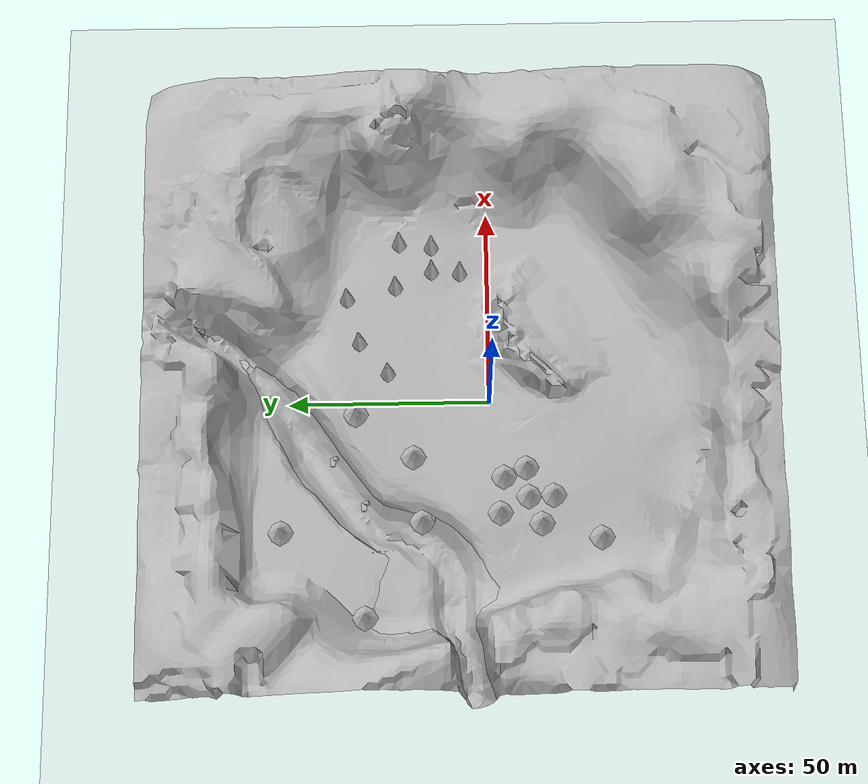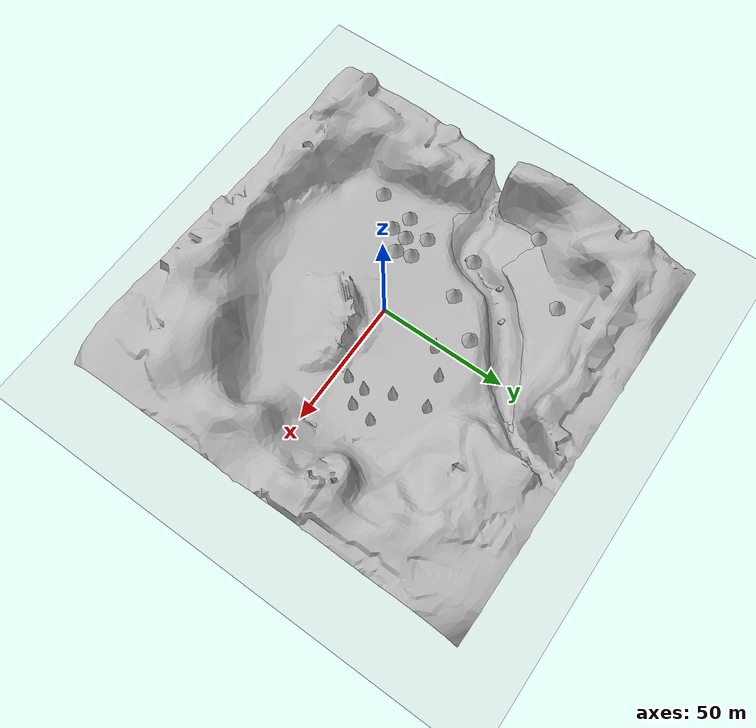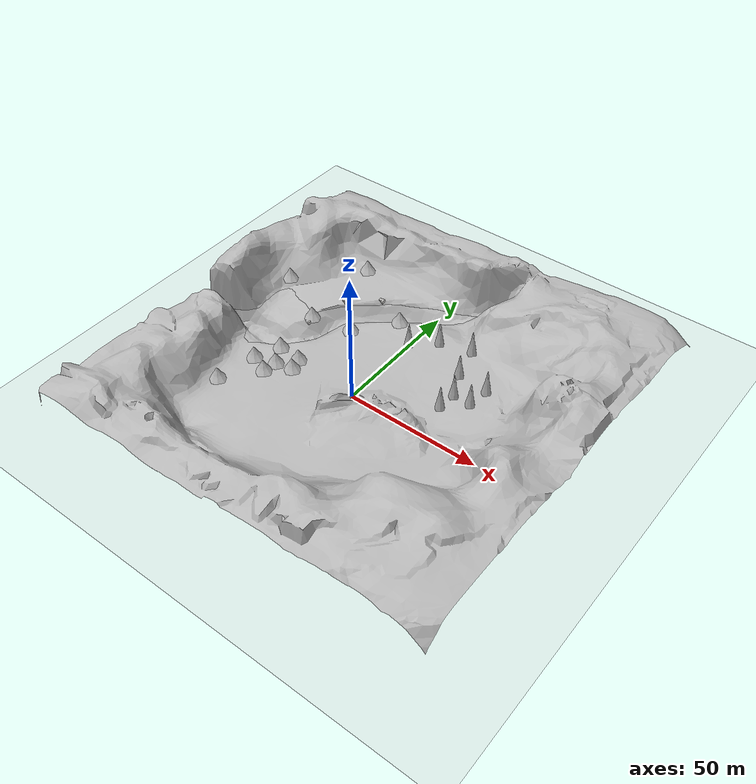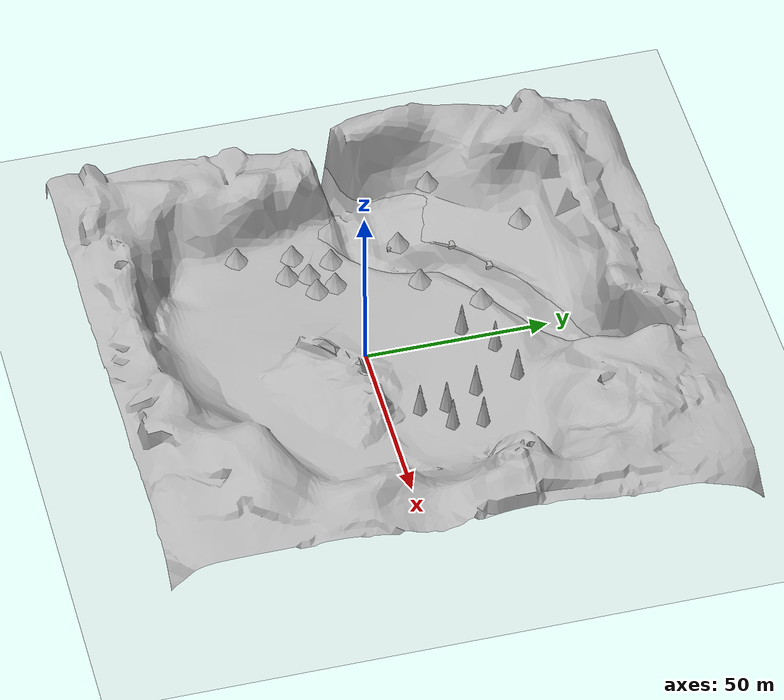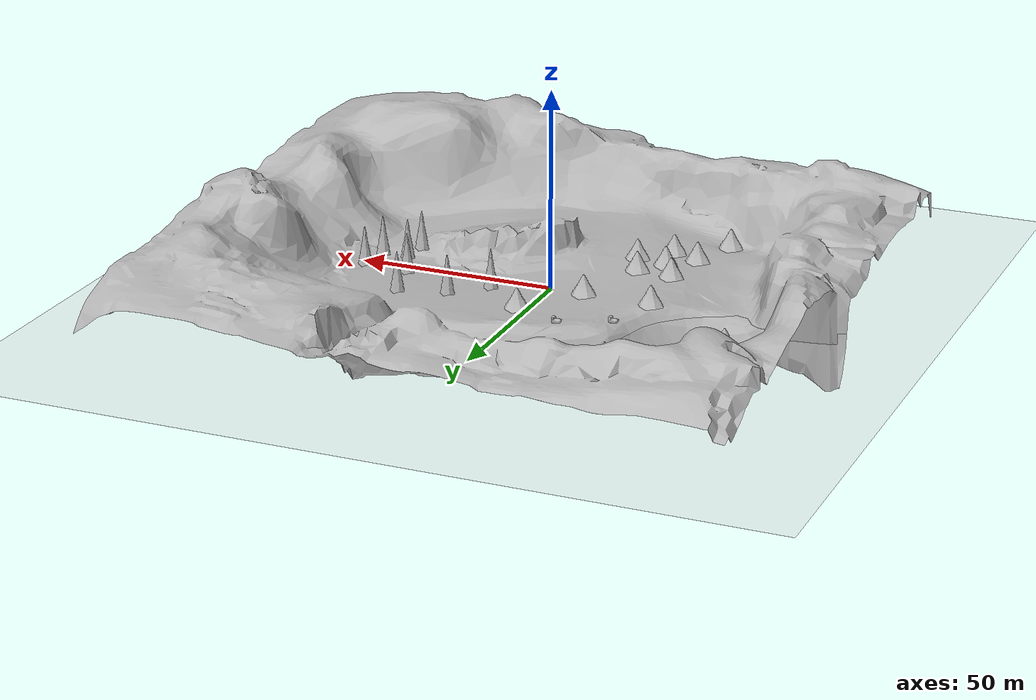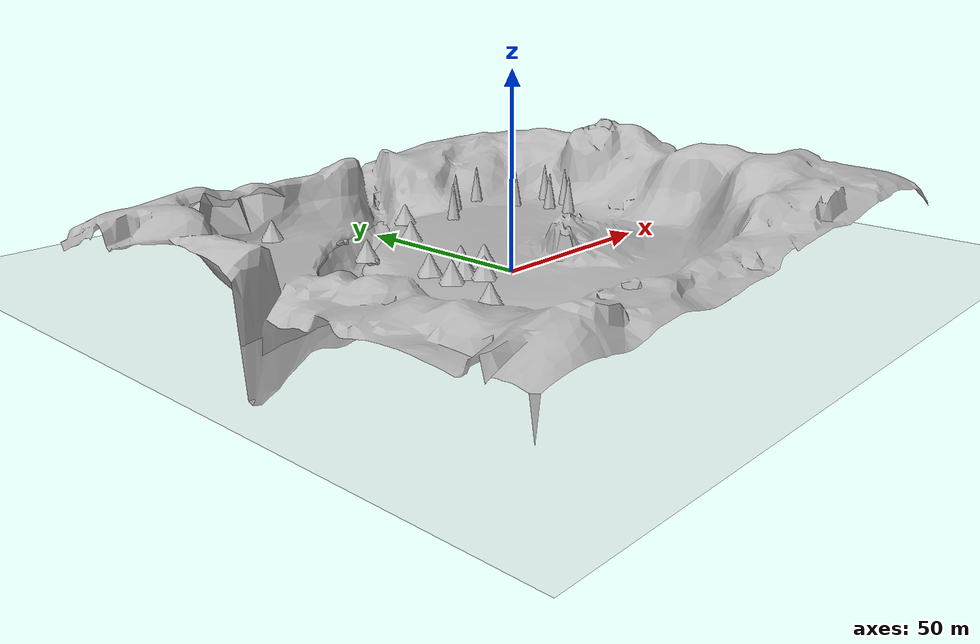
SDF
<?xml version="1.0"?>
<sdf version="1.4">
  <world name="my_world">
    <physics type="ode">
        <max_step_size>0.001</max_step_size>
    </physics>

    <scene>
      <sky>
        <clouds>
          <speed>12</speed>
        </clouds>
      </sky>
    </scene>

    <gui>
      <camera name="my_camera">
        <pose>3 0.1 1.5 0 0 3.14</pose>
      </camera>
    </gui>

    <include>
      <uri>model://ground_plane</uri>
    </include>

    <include>
      <uri>model://sun</uri>
      <pose>0 0 20 0 0 0</pose>
    </include>

   <include>
      <name>Mountain</name>
      <uri>model://alpine</uri>
      <pose>0 0 0 0 0 0</pose>
    </include>

   <include>
      <name>Stream</name>
      <uri>model://stream</uri>
      <pose>-1 0 2.5 0 0 0</pose>
    </include>

  <include>
      <name>bigtree01</name>
      <uri>model://bigtree</uri>
      <pose>-34 51.42 5 0 0 0</pose>
    </include>

  <include>
      <name>bigtree02</name>
      <uri>model://bigtree</uri>
      <pose>-55 31 4 0 0 0</pose>
    </include>

  <include>
      <name>rock01</name>
      <uri>model://rock</uri>
      <pose>-32 15 6 0 0 0</pose>
    </include>

  <include>
      <name>rock02</name>
      <uri>model://rock</uri>
      <pose>-28 31 7 0 0 0</pose>
    </include>

    <include>
      <name>bigtree03</name>
      <uri>model://bigtree</uri>
      <pose>-32 17 6 0 0 0</pose>
    </include>

    <include>
      <name>rock03</name>
      <uri>model://rock</uri>
      <pose>-17 38.49 8 0 0 0</pose>
    </include>

    <include>
      <name>bigtree05</name>
      <uri>model://bigtree</uri>
      <pose>-16 19 7 0 0 0</pose>
    </include>

  <include>
      <name>bigtree06</name>
      <uri>model://bigtree</uri>
      <pose>-5 33.0 7 0 0 0</pose>
    </include>

   <include>
      <name>bigtree07</name>
      <uri>model://bigtree</uri>
      <pose>-21 -3.0 6 0 0 0</pose>
    </include>

  <include>
      <name>bigtree08</name>
      <uri>model://bigtree</uri>
      <pose>-30 -2 6 0 0 0</pose>
    </include>

  <include>
      <name>bigtree09</name>
      <uri>model://bigtree</uri>
      <pose>-19 -8.45 7 0 0 0</pose>
    </include>

 <include>
      <name>bigtree10</name>
      <uri>model://bigtree</uri>
      <pose>-26 -9 6 0 0 0</pose>
    </include>

 <include>
      <name>bigtree11</name>
      <uri>model://bigtree</uri>
      <pose>-33 -12 7 0 0 0</pose>
    </include>

 <include>
      <name>bigtree12</name>
      <uri>model://bigtree</uri>
      <pose>-26 -15 7 0 0 0</pose>
    </include>

 <include>
      <name>bigtree13</name>
      <uri>model://bigtree</uri>
      <pose>-36.44 -26.43 6 0 0 0</pose>
    </include>

 <include>
      <name>tree01</name>
      <uri>model://tree</uri>
      <pose>5 25 8 0 0 0</pose>
    </include>

 <include>
      <name>tree02</name>
      <uri>model://tree</uri>
      <pose>13 32 8 0 0 0</pose>
    </include>

 <include>
      <name>tree03</name>
      <uri>model://tree</uri>
      <pose>24.46 35 8 0 0 0</pose>
    </include>

 <include>
      <name>tree04</name>
      <uri>model://tree</uri>
      <pose>27.48 23 8 0 0 0</pose>
    </include>

 <include>
      <name>tree05</name>
      <uri>model://tree</uri>
      <pose>31.51 14 8 0 0 0</pose>
    </include>

 <include>
      <name>tree06</name>
      <uri>model://tree</uri>
      <pose>31 7 8 0 0 0</pose>
    </include>

 <include>
      <name>tree06</name>
      <uri>model://tree</uri>
      <pose>38 14 8 0 0 0</pose>
    </include>

 <include>
      <name>tree07</name>
      <uri>model://tree</uri>
      <pose>39 22 8 0 0 0</pose>
    </include>

  </world>
</sdf>

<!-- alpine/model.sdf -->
<sdf version="1.5">
  <model name="alpine_model">
    <static>
      true
    </static>
    <link name="alpine_link">
      <inertial>
        <mass>0.390</mass>
        <inertia>
          <ixx>0.00058</ixx>
          <ixy>0</ixy>
          <ixz>0</ixz>
          <iyy>0.00058</iyy>
          <iyz>0</iyz>
          <izz>0.00019</izz>
        </inertia>
      </inertial>
      <collision name="alpine_collision">
        <geometry>
          <mesh>
            <uri>model://alpine/meshes/alpine.dae</uri>
          </mesh>
        </geometry>
        <surface>
          <friction>
            <ode>
              <mu>1.0</mu>
              <mu2>1.0</mu2>
            </ode>
          </friction>
          <contact>
            <ode>
              <kp>10000000.0</kp>
              <kd>1.0</kd>
              <min_depth>0.001</min_depth>
              <max_vel>0.1</max_vel>
            </ode>
          </contact>
        </surface>
      </collision>
      <visual name="alpine_visual">
        <geometry>
          <mesh>
            <uri>model://alpine/meshes/alpine.dae</uri>
          </mesh>
        </geometry>
      </visual>
    </link>
  </model>
</sdf>

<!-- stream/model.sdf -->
<sdf version="1.5">
  <model name="river_model">
<static>
  true
</static>
    <link name="river_link">
      <inertial>
        <mass>0.390</mass>
        <inertia>
          <ixx>0.00058</ixx>
          <ixy>0</ixy>
          <ixz>0</ixz>
          <iyy>0.00058</iyy>
          <iyz>0</iyz>
          <izz>0.00019</izz>
        </inertia>
      </inertial>
      <collision name="river_collision">
        <geometry>
          <mesh>
            <uri>model://stream/meshes/river_olaf.dae</uri>
          </mesh>
        </geometry>
        <surface>
          <friction>
            <ode>
              <mu>1.0</mu>
              <mu2>1.0</mu2>
            </ode>
          </friction>
          <contact>
            <ode>
              <kp>10000000.0</kp>
              <kd>1.0</kd>
              <min_depth>0.001</min_depth>
              <max_vel>0.1</max_vel>
            </ode>
          </contact>
        </surface>
      </collision>
      <visual name="stream_visual">
        <geometry>
          <mesh>
            <uri>model://stream/meshes/river_olaf.dae</uri>
          </mesh>
        </geometry>
      </visual>
    </link>
  </model>
</sdf>

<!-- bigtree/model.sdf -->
<sdf version="1.5">
  <model name="bigtree_model">
<static>
true
</static>
    <link name="bigtree_link">
      <inertial>
        <mass>0.390</mass>
        <inertia>
          <ixx>0.00058</ixx>
          <ixy>0</ixy>
          <ixz>0</ixz>
          <iyy>0.00058</iyy>
          <iyz>0</iyz>
          <izz>0.00019</izz>
        </inertia>
      </inertial>
      <collision name="bigtree_collision">
        <geometry>
          <mesh>
            <uri>model://bigtree/meshes/tanne2.dae</uri>
          </mesh>
        </geometry>
        <surface>
          <friction>
            <ode>
              <mu>1.0</mu>
              <mu2>1.0</mu2>
            </ode>
          </friction>
          <contact>
            <ode>
              <kp>10000000.0</kp>
              <kd>1.0</kd>
              <min_depth>0.001</min_depth>
              <max_vel>0.1</max_vel>
            </ode>
          </contact>
        </surface>
      </collision>
      <visual name="bigtree_visual">
        <geometry>
          <mesh>
            <uri>model://bigtree/meshes/tanne2.dae</uri>
          </mesh>
        </geometry>
      </visual>
    </link>
  </model>
</sdf>

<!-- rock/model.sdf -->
<sdf version="1.5">
  <model name="rock_model">
    <static>
      true
    </static>
    <link name="rock_link">
      <inertial>
        <mass>0.390</mass>
        <inertia>
          <ixx>0.00058</ixx>
          <ixy>0</ixy>
          <ixz>0</ixz>
          <iyy>0.00058</iyy>
          <iyz>0</iyz>
          <izz>0.00019</izz>
        </inertia>
      </inertial>
      <collision name="rock_collision">
        <geometry>
          <mesh>
            <uri>model://rock/meshes/rock.dae</uri>
          </mesh>
        </geometry>
        <surface>
          <friction>
            <ode>
              <mu>1.0</mu>
              <mu2>1.0</mu2>
            </ode>
          </friction>
          <contact>
            <ode>
              <kp>10000000.0</kp>
              <kd>1.0</kd>
              <min_depth>0.001</min_depth>
              <max_vel>0.1</max_vel>
            </ode>
          </contact>
        </surface>
      </collision>
      <visual name="rock_visual">
        <geometry>
          <mesh>
            <uri>model://rock/meshes/rock.dae</uri>
          </mesh>
        </geometry>
      </visual>
    </link>
  </model>
</sdf>

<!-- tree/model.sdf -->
<sdf version="1.5">
  <model name="tree_model">
<static>
  true
</static>
    <link name="tree_link">
      <inertial>
        <mass>0.390</mass>
        <inertia>
          <ixx>0.00058</ixx>
          <ixy>0</ixy>
          <ixz>0</ixz>
          <iyy>0.00058</iyy>
          <iyz>0</iyz>
          <izz>0.00019</izz>
        </inertia>
      </inertial>
      <collision name="tree_collision">
        <geometry>
          <mesh>
            <uri>model://tree/meshes/tanne1.dae</uri>
          </mesh>
        </geometry>
        <surface>
          <friction>
            <ode>
              <mu>1.0</mu>
              <mu2>1.0</mu2>
            </ode>
          </friction>
          <contact>
            <ode>
              <kp>10000000.0</kp>
              <kd>1.0</kd>
              <min_depth>0.001</min_depth>
              <max_vel>0.1</max_vel>
            </ode>
          </contact>
        </surface>
      </collision>
      <visual name="tree_visual">
        <geometry>
          <mesh>
            <uri>model://tree/meshes/tanne1.dae</uri>
          </mesh>
        </geometry>
      </visual>
    </link>
  </model>
</sdf>
